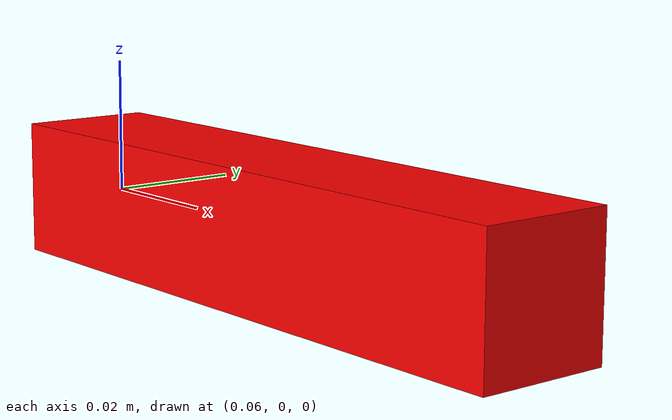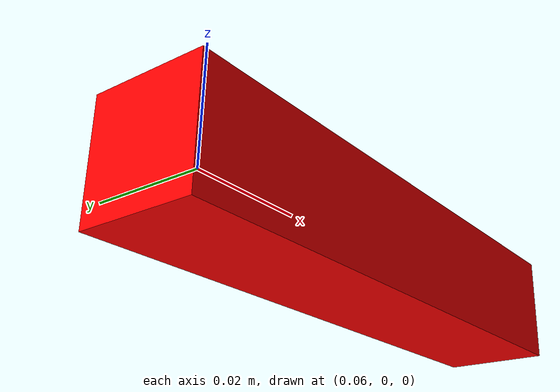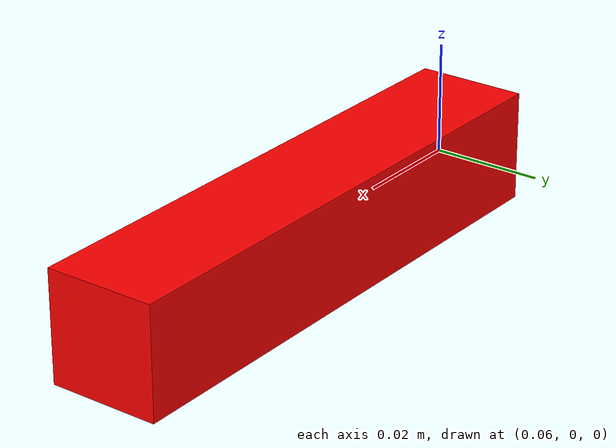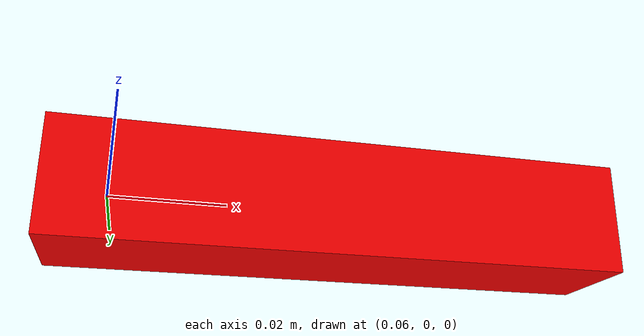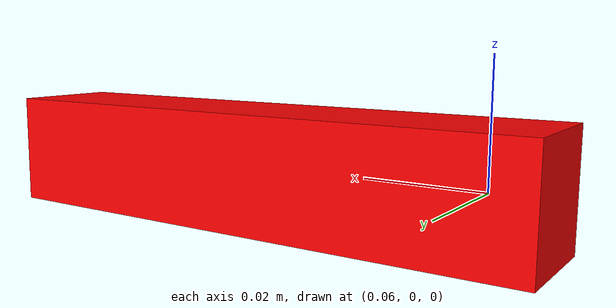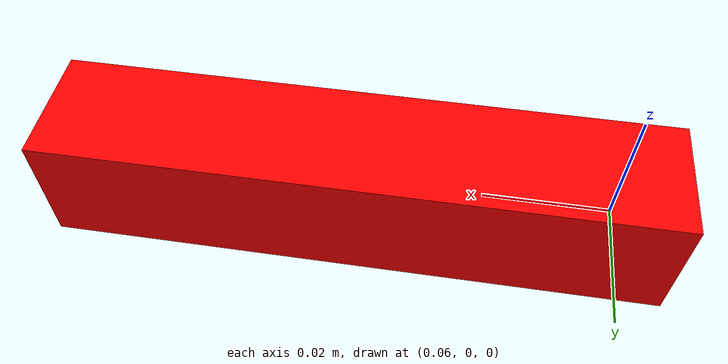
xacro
<?xml version="1.0"?>
<robot xmlns:xacro="http://www.ros.org/wiki/xacro" name="yolo_vertical_camera">
  <xacro:arg name="camera_height_arg" default=""/>
  <xacro:arg name="camera_horizontal_fov_arg" default=""/>
  <xacro:arg name="camera_image_width_arg" default=""/>
  <xacro:arg name="camera_image_height_arg" default=""/>
  <xacro:arg name="camera_update_rate_arg" default=""/>

  <xacro:property name="camera_height" value="$(arg camera_height_arg)"/>
  <xacro:property name="camera_horizontal_fov" value="$(arg camera_horizontal_fov_arg)"/>
  <xacro:property name="camera_image_width" value="$(arg camera_image_width_arg)"/>
  <xacro:property name="camera_image_height" value="$(arg camera_image_height_arg)"/>
  <xacro:property name="camera_update_rate" value="$(arg camera_update_rate_arg)"/>

  <gazebo>
    <static>true</static>
  </gazebo>

  <link name="camera_link">
    <inertial>
      <mass value="0.001"/>
      <origin xyz="0 0 0" rpy="0 0 0"/>
      <inertia ixx="0.0001" ixy="0" ixz="0" iyy="0.0001" iyz="0" izz="0.0001"/>
    </inertial>
  </link>

  <link name="camera_link_optical">
    <visual>
      <origin xyz="0 0 0.1" rpy="0 0 0"/>
      <geometry>
        <box size="0.02 0.02 0.1"/>
      </geometry>
      <material name="red">
        <color rgba="1 0 0 1"/>
      </material>
    </visual>
  </link>

  <gazebo reference="camera_link">
    <pose>0 0 ${camera_height} 0 ${-pi/2} 0</pose>
    <sensor name="camera_sensor" type="camera">
      <pose>0 0 0 0 0 ${-pi}</pose>
      <visualize>true</visualize>
      <update_rate>${camera_update_rate}</update_rate>
      <camera>
        <camera_info_topic>camera/camera_info</camera_info_topic>
        <horizontal_fov>${camera_horizontal_fov}</horizontal_fov>
        <image>
          <format>R8G8B8</format>
          <width>${camera_image_width}</width>
          <height>${camera_image_height}</height>
        </image>
        <clip>
          <near>0.05</near>
          <far>50.0</far>
        </clip>
      </camera>
      <topic>camera/image_raw</topic>
      <gz_frame_id>camera_link_optical</gz_frame_id>
    </sensor>
  </gazebo>

  <joint name="camera_joint_optical" type="fixed">
    <parent link="camera_link"/>
    <child link="camera_link_optical"/>
    <origin xyz="0 0 0" rpy="${-pi/2} 0 ${-pi/2}"/>
  </joint>
</robot>
